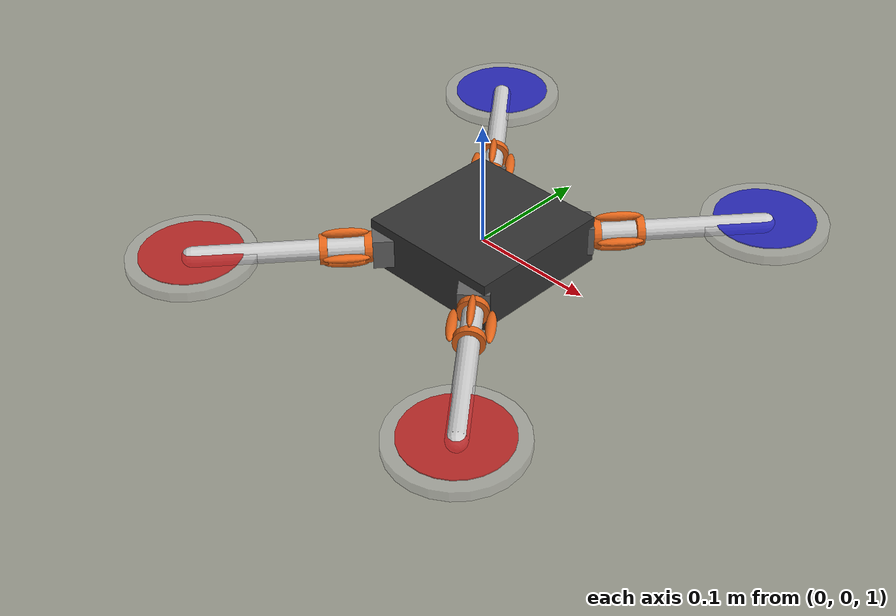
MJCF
<mujoco model="HoLoArm Quadrotor">
  <compiler angle="radian"/>
  <option timestep="0.002" gravity="0 0 -9.81"/>

  <default>
    <geom friction="0.5 0.1 0.01" solref="0.02 1"/>
    <joint limited="true"/>
  </default>

  <asset>
    <texture name="grid" type="2d" builtin="checker" rgb1="0.2 0.3 0.4" rgb2="0.1 0.2 0.3" width="512" height="512" mark="edge"/>
    <material name="gridmat" texture="grid" texuniform="true" texrepeat="5 5" reflectance="0.2"/>
  </asset>

  <worldbody>
    <light name="light" pos="0 0 3"/>
    <geom name="floor" type="plane" size="0 0 0.05" material="gridmat"/>

    <body name="holoarm_core" pos="0 0 1.0">
      <freejoint name="drone_freejoint"/>
      <geom type="box" size="0.06 0.06 0.02" mass="0.41" rgba="0.2 0.2 0.2 1"/>
      <site name="imu" pos="0 0 0"/>

      <body name="fl_base" pos="0.054 0.065 0" euler="0 0 0.8723">
        <geom type="box" size="0.008 0.012 0.012" pos="-0.008 0 0" rgba="0.4 0.4 0.4 1" mass="0.01"/>
        <geom type="cylinder" size="0.012 0.003" pos="0.003 0 0" euler="0 1.5708 0" rgba="0.9 0.4 0.1 1" mass="0.005"/>
        <geom type="cylinder" size="0.012 0.003" pos="0.037 0 0" euler="0 1.5708 0" rgba="0.9 0.4 0.1 1" mass="0.005"/>
        <geom type="ellipsoid" size="0.018 0.003 0.004" pos="0.02 0 0.014" rgba="0.9 0.4 0.1 1"/>
        <geom type="ellipsoid" size="0.018 0.003 0.004" pos="0.02 0 -0.014" rgba="0.9 0.4 0.1 1"/>
        <geom type="ellipsoid" size="0.018 0.004 0.003" pos="0.02 0.014 0" rgba="0.9 0.4 0.1 1"/>
        <geom type="ellipsoid" size="0.018 0.004 0.003" pos="0.02 -0.014 0" rgba="0.9 0.4 0.1 1"/>

        <joint name="fl_bend_pitch" type="hinge" axis="0 1 0" stiffness="15.0" damping="2.0" range="-1.2 1.2"/>
        <joint name="fl_bend_yaw" type="hinge" axis="0 0 1" stiffness="15.0" damping="2.0" range="-1.2 1.2"/>

        <body name="fl_arm_sliding" pos="0 0 0">
          <joint name="fl_slide" type="slide" axis="1 0 0" stiffness="400" damping="20" range="-0.04 0.04"/>
          <geom type="capsule" size="0.008 0.068" pos="0.068 0 0" euler="0 1.5708 0" mass="0.07" rgba="0.8 0.8 0.8 1"/>

          <body name="fl_motor" pos="0.136 0 0">
            <geom type="cylinder" size="0.04 0.005" mass="0.04" rgba="0.1 0.1 0.8 0.8"/>
            <geom type="cylinder" size="0.05 0.004" mass="0.01" rgba="0.8 0.8 0.8 0.3" friction="0.01 0.01 0.01" contype="0" conaffinity="0"/>
            <site name="thrust_fl" pos="0 0 0"/>
          </body>
        </body>
      </body>

      <body name="fr_base" pos="0.054 -0.065 0" euler="0 0 -0.8723">
        <geom type="box" size="0.008 0.012 0.012" pos="-0.008 0 0" rgba="0.4 0.4 0.4 1" mass="0.01"/>
        <geom type="cylinder" size="0.012 0.003" pos="0.003 0 0" euler="0 1.5708 0" rgba="0.9 0.4 0.1 1" mass="0.005"/>
        <geom type="cylinder" size="0.012 0.003" pos="0.037 0 0" euler="0 1.5708 0" rgba="0.9 0.4 0.1 1" mass="0.005"/>
        <geom type="ellipsoid" size="0.018 0.003 0.004" pos="0.02 0 0.014" rgba="0.9 0.4 0.1 1"/>
        <geom type="ellipsoid" size="0.018 0.003 0.004" pos="0.02 0 -0.014" rgba="0.9 0.4 0.1 1"/>
        <geom type="ellipsoid" size="0.018 0.004 0.003" pos="0.02 0.014 0" rgba="0.9 0.4 0.1 1"/>
        <geom type="ellipsoid" size="0.018 0.004 0.003" pos="0.02 -0.014 0" rgba="0.9 0.4 0.1 1"/>

        <joint name="fr_bend_pitch" type="hinge" axis="0 1 0" stiffness="15.0" damping="2.0" range="-1.2 1.2"/>
        <joint name="fr_bend_yaw" type="hinge" axis="0 0 1" stiffness="15.0" damping="2.0" range="-1.2 1.2"/>

        <body name="fr_arm_sliding" pos="0 0 0">
          <joint name="fr_slide" type="slide" axis="1 0 0" stiffness="400" damping="20" range="-0.04 0.04"/>
          <geom type="capsule" size="0.008 0.068" pos="0.068 0 0" euler="0 1.5708 0" mass="0.07" rgba="0.8 0.8 0.8 1"/>

          <body name="fr_motor" pos="0.136 0 0">
            <geom type="cylinder" size="0.04 0.005" mass="0.04" rgba="0.8 0.1 0.1 0.8"/>
            <geom type="cylinder" size="0.05 0.004" mass="0.01" rgba="0.8 0.8 0.8 0.3" friction="0.01 0.01 0.01" contype="0" conaffinity="0"/>
            <site name="thrust_fr" pos="0 0 0"/>
          </body>
        </body>
      </body>

      <body name="rl_base" pos="-0.054 0.065 0" euler="0 0 2.2693">
        <geom type="box" size="0.008 0.012 0.012" pos="-0.008 0 0" rgba="0.4 0.4 0.4 1" mass="0.01"/>
        <geom type="cylinder" size="0.012 0.003" pos="0.003 0 0" euler="0 1.5708 0" rgba="0.9 0.4 0.1 1" mass="0.005"/>
        <geom type="cylinder" size="0.012 0.003" pos="0.037 0 0" euler="0 1.5708 0" rgba="0.9 0.4 0.1 1" mass="0.005"/>
        <geom type="ellipsoid" size="0.018 0.003 0.004" pos="0.02 0 0.014" rgba="0.9 0.4 0.1 1"/>
        <geom type="ellipsoid" size="0.018 0.003 0.004" pos="0.02 0 -0.014" rgba="0.9 0.4 0.1 1"/>
        <geom type="ellipsoid" size="0.018 0.004 0.003" pos="0.02 0.014 0" rgba="0.9 0.4 0.1 1"/>
        <geom type="ellipsoid" size="0.018 0.004 0.003" pos="0.02 -0.014 0" rgba="0.9 0.4 0.1 1"/>

        <joint name="rl_bend_pitch" type="hinge" axis="0 1 0" stiffness="15.0" damping="2.0" range="-1.2 1.2"/>
        <joint name="rl_bend_yaw" type="hinge" axis="0 0 1" stiffness="15.0" damping="2.0" range="-1.2 1.2"/>

        <body name="rl_arm_sliding" pos="0 0 0">
          <joint name="rl_slide" type="slide" axis="1 0 0" stiffness="400" damping="20" range="-0.04 0.04"/>
          <geom type="capsule" size="0.008 0.068" pos="0.068 0 0" euler="0 1.5708 0" mass="0.07" rgba="0.8 0.8 0.8 1"/>

          <body name="rl_motor" pos="0.136 0 0">
            <geom type="cylinder" size="0.04 0.005" mass="0.04" rgba="0.1 0.1 0.8 0.8"/>
            <geom type="cylinder" size="0.05 0.004" mass="0.01" rgba="0.8 0.8 0.8 0.3" friction="0.01 0.01 0.01" contype="0" conaffinity="0"/>
            <site name="thrust_rl" pos="0 0 0"/>
          </body>
        </body>
      </body>

      <body name="rr_base" pos="-0.054 -0.065 0" euler="0 0 -2.2693">
        <geom type="box" size="0.008 0.012 0.012" pos="-0.008 0 0" rgba="0.4 0.4 0.4 1" mass="0.01"/>
        <geom type="cylinder" size="0.012 0.003" pos="0.003 0 0" euler="0 1.5708 0" rgba="0.9 0.4 0.1 1" mass="0.005"/>
        <geom type="cylinder" size="0.012 0.003" pos="0.037 0 0" euler="0 1.5708 0" rgba="0.9 0.4 0.1 1" mass="0.005"/>
        <geom type="ellipsoid" size="0.018 0.003 0.004" pos="0.02 0 0.014" rgba="0.9 0.4 0.1 1"/>
        <geom type="ellipsoid" size="0.018 0.003 0.004" pos="0.02 0 -0.014" rgba="0.9 0.4 0.1 1"/>
        <geom type="ellipsoid" size="0.018 0.004 0.003" pos="0.02 0.014 0" rgba="0.9 0.4 0.1 1"/>
        <geom type="ellipsoid" size="0.018 0.004 0.003" pos="0.02 -0.014 0" rgba="0.9 0.4 0.1 1"/>

        <joint name="rr_bend_pitch" type="hinge" axis="0 1 0" stiffness="15.0" damping="2.0" range="-1.2 1.2"/>
        <joint name="rr_bend_yaw" type="hinge" axis="0 0 1" stiffness="15.0" damping="2.0" range="-1.2 1.2"/>

        <body name="rr_arm_sliding" pos="0 0 0">
          <joint name="rr_slide" type="slide" axis="1 0 0" stiffness="400" damping="20" range="-0.04 0.04"/>
          <geom type="capsule" size="0.008 0.068" pos="0.068 0 0" euler="0 1.5708 0" mass="0.07" rgba="0.8 0.8 0.8 1"/>

          <body name="rr_motor" pos="0.136 0 0">
            <geom type="cylinder" size="0.04 0.005" mass="0.04" rgba="0.8 0.1 0.1 0.8"/>
            <geom type="cylinder" size="0.05 0.004" mass="0.01" rgba="0.8 0.8 0.8 0.3" friction="0.01 0.01 0.01" contype="0" conaffinity="0"/>
            <site name="thrust_rr" pos="0 0 0"/>
          </body>
        </body>
      </body>

    </body>
  </worldbody>

  <actuator>
    <general name="motor_fl" site="thrust_fl" gear="0 0 1 0 0 -0.02" ctrlrange="0 10"/>
    <general name="motor_fr" site="thrust_fr" gear="0 0 1 0 0  0.02" ctrlrange="0 10"/>
    <general name="motor_rl" site="thrust_rl" gear="0 0 1 0 0  0.02" ctrlrange="0 10"/>
    <general name="motor_rr" site="thrust_rr" gear="0 0 1 0 0 -0.02" ctrlrange="0 10"/>
  </actuator>

</mujoco>
